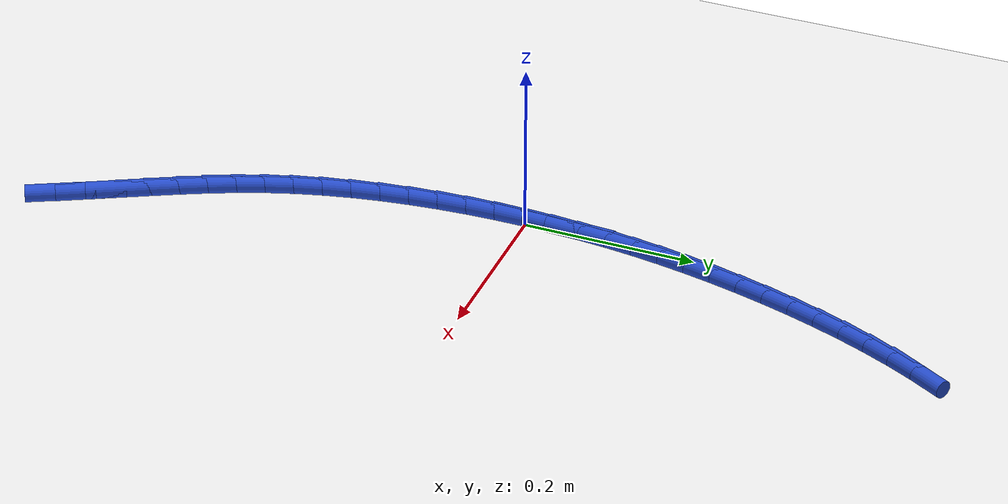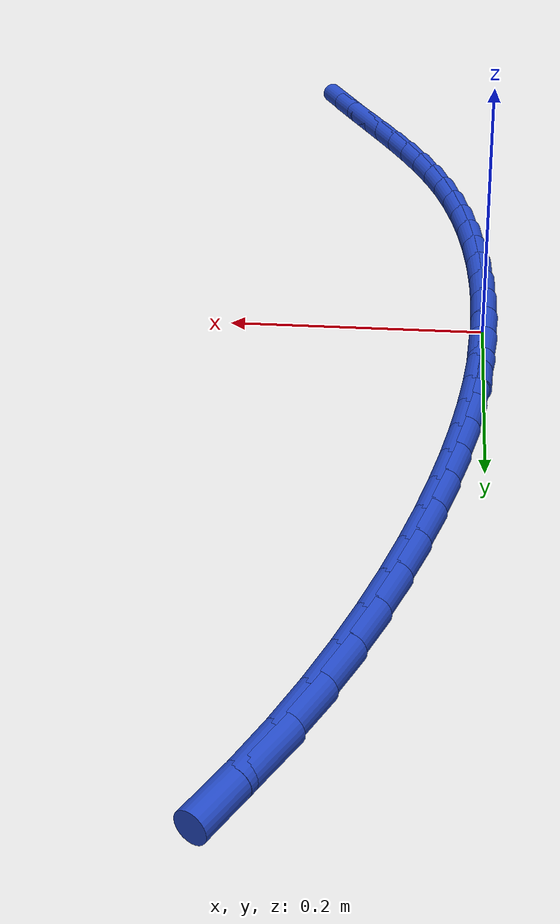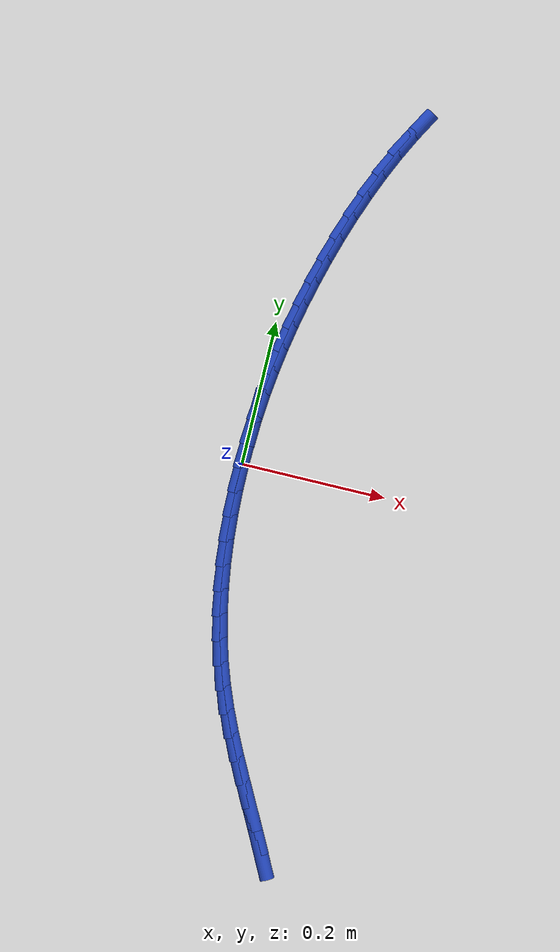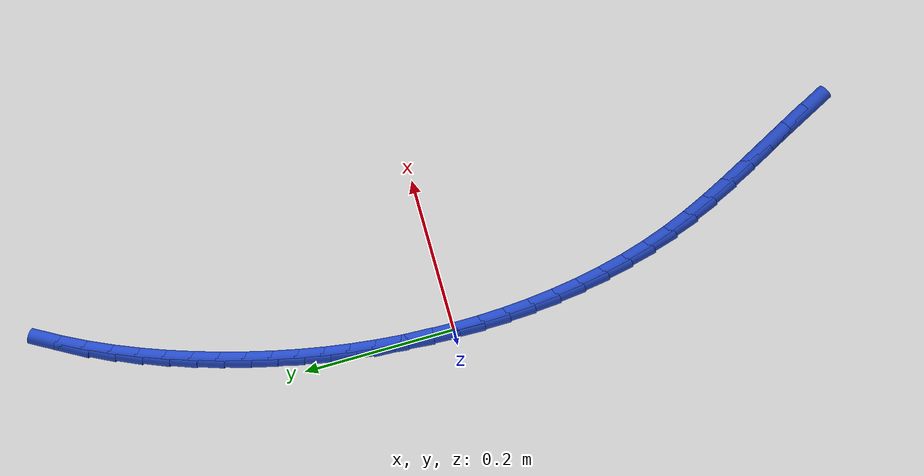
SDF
<sdf version="1.6">
 <world name="default">
  <model name="ground_plane">
   <static>1</static>
   <link name="link">
    <collision name="collision">
     <geometry><plane><normal>0 0 1</normal><size>100 100</size></plane></geometry>
     <surface><friction><ode><mu>100</mu><mu2>50</mu2></ode></friction></surface>
    </collision>
    <visual name="visual">
     <cast_shadows>0</cast_shadows>
     <geometry><plane><normal>0 0 1</normal><size>100 100</size></plane></geometry>
     <material>
      <script><uri>file://media/materials/scripts/gazebo.material</uri><name>Gazebo/WhiteGlow</name></script>
     </material>
    </visual>
   </link>
  </model>
  <model name="line">
   <link name="link_0">
    <pose>1.9949319973733282e-17 1.0408340855860843e-16 0.01 0 1.57 1.5419335508537704</pose>
    <collision name="collision">
     <geometry><cylinder><radius>0.01</radius><length>0.08</length></cylinder></geometry>
    </collision>
    <visual name="visual">
     <material>
      <script><name>Gazebo/Blue</name><uri>file://media/materials/scripts/gazebo.material</uri></script>
     </material>
     <geometry><cylinder><radius>0.01</radius><length>0.08</length></cylinder></geometry>
    </visual>
   </link>
   <link name="link_1">
    <pose>0.0009726199615363683 0.033688716046483366 0.01 0 1.57 1.5105921317045155</pose>
    <collision name="collision">
     <geometry><cylinder><radius>0.01</radius><length>0.08</length></cylinder></geometry>
    </collision>
    <visual name="visual">
     <material>
      <script><name>Gazebo/Blue</name><uri>file://media/materials/scripts/gazebo.material</uri></script>
     </material>
     <geometry><cylinder><radius>0.01</radius><length>0.08</length></cylinder></geometry>
    </visual>
   </link>
   <link name="link_2">
    <pose>0.0029908607633866275 0.06717146268576321 0.01 0 1.57 1.4793949921731384</pose>
    <collision name="collision">
     <geometry><cylinder><radius>0.01</radius><length>0.08</length></cylinder></geometry>
    </collision>
    <visual name="visual">
     <material>
      <script><name>Gazebo/Blue</name><uri>file://media/materials/scripts/gazebo.material</uri></script>
     </material>
     <geometry><cylinder><radius>0.01</radius><length>0.08</length></cylinder></geometry>
    </visual>
   </link>
   <link name="link_3">
    <pose>0.006043759239022774 0.1004794251721321 0.01 0 1.57 1.4484889801887455</pose>
    <collision name="collision">
     <geometry><cylinder><radius>0.01</radius><length>0.08</length></cylinder></geometry>
    </collision>
    <visual name="visual">
     <material>
      <script><name>Gazebo/Blue</name><uri>file://media/materials/scripts/gazebo.material</uri></script>
     </material>
     <geometry><cylinder><radius>0.01</radius><length>0.08</length></cylinder></geometry>
    </visual>
   </link>
   <link name="link_4">
    <pose>0.010120352221916788 0.13364378875988256 0.01 0 1.57 1.4180166907970888</pose>
    <collision name="collision">
     <geometry><cylinder><radius>0.01</radius><length>0.08</length></cylinder></geometry>
    </collision>
    <visual name="visual">
     <material>
      <script><name>Gazebo/Blue</name><uri>file://media/materials/scripts/gazebo.material</uri></script>
     </material>
     <geometry><cylinder><radius>0.01</radius><length>0.08</length></cylinder></geometry>
    </visual>
   </link>
   <link name="link_5">
    <pose>0.015209676545540646 0.1666957387033071 0.01 0 1.57 1.3881135808997143</pose>
    <collision name="collision">
     <geometry><cylinder><radius>0.01</radius><length>0.08</length></cylinder></geometry>
    </collision>
    <visual name="visual">
     <material>
      <script><name>Gazebo/Blue</name><uri>file://media/materials/scripts/gazebo.material</uri></script>
     </material>
     <geometry><cylinder><radius>0.01</radius><length>0.08</length></cylinder></geometry>
    </visual>
   </link>
   <link name="link_6">
    <pose>0.02130076904336632 0.19966646025669818 0.01 0 1.57 1.3589054377201917</pose>
    <collision name="collision">
     <geometry><cylinder><radius>0.01</radius><length>0.08</length></cylinder></geometry>
    </collision>
    <visual name="visual">
     <material>
      <script><name>Gazebo/Blue</name><uri>file://media/materials/scripts/gazebo.material</uri></script>
     </material>
     <geometry><cylinder><radius>0.01</radius><length>0.08</length></cylinder></geometry>
    </visual>
   </link>
   <link name="link_7">
    <pose>0.028382666548865808 0.2325871386743484 0.01 0 1.57 1.3305063078921995</pose>
    <collision name="collision">
     <geometry><cylinder><radius>0.01</radius><length>0.08</length></cylinder></geometry>
    </collision>
    <visual name="visual">
     <material>
      <script><name>Gazebo/Blue</name><uri>file://media/materials/scripts/gazebo.material</uri></script>
     </material>
     <geometry><cylinder><radius>0.01</radius><length>0.08</length></cylinder></geometry>
    </visual>
   </link>
   <link name="link_8">
    <pose>0.03644440589551107 0.26548895921055027 0.01 0 1.57 1.3030162141385755</pose>
    <collision name="collision">
     <geometry><cylinder><radius>0.01</radius><length>0.08</length></cylinder></geometry>
    </collision>
    <visual name="visual">
     <material>
      <script><name>Gazebo/Blue</name><uri>file://media/materials/scripts/gazebo.material</uri></script>
     </material>
     <geometry><cylinder><radius>0.01</radius><length>0.08</length></cylinder></geometry>
    </visual>
   </link>
   <link name="link_9">
    <pose>0.045475038593171375 0.29840306513913895 0.01 0 1.57 1.2757563169907238</pose>
    <collision name="collision">
     <geometry><cylinder><radius>0.01</radius><length>0.08</length></cylinder></geometry>
    </collision>
    <visual name="visual">
     <material>
      <script><name>Gazebo/Blue</name><uri>file://media/materials/scripts/gazebo.material</uri></script>
     </material>
     <geometry><cylinder><radius>0.01</radius><length>0.08</length></cylinder></geometry>
    </visual>
   </link>
   <link name="link_10">
    <pose>0.05547835118894845 0.3313184515426218 0.01 0 1.57 1.2464646805544286</pose>
    <collision name="collision">
     <geometry><cylinder><radius>0.01</radius><length>0.08</length></cylinder></geometry>
    </collision>
    <visual name="visual">
     <material>
      <script><name>Gazebo/Blue</name><uri>file://media/materials/scripts/gazebo.material</uri></script>
     </material>
     <geometry><cylinder><radius>0.01</radius><length>0.08</length></cylinder></geometry>
    </visual>
   </link>
   <link name="link_11">
    <pose>0.06650055607922055 0.36410275834271794 0.01 0 1.57 1.2145175076593782</pose>
    <collision name="collision">
     <geometry><cylinder><radius>0.01</radius><length>0.08</length></cylinder></geometry>
    </collision>
    <visual name="visual">
     <material>
      <script><name>Gazebo/Blue</name><uri>file://media/materials/scripts/gazebo.material</uri></script>
     </material>
     <geometry><cylinder><radius>0.01</radius><length>0.08</length></cylinder></geometry>
    </visual>
   </link>
   <link name="link_12">
    <pose>0.0785954551267921 0.39660191650459864 0.01 0 1.57 1.1796495253171062</pose>
    <collision name="collision">
     <geometry><cylinder><radius>0.01</radius><length>0.08</length></cylinder></geometry>
    </collision>
    <visual name="visual">
     <material>
      <script><name>Gazebo/Blue</name><uri>file://media/materials/scripts/gazebo.material</uri></script>
     </material>
     <geometry><cylinder><radius>0.01</radius><length>0.08</length></cylinder></geometry>
    </visual>
   </link>
   <link name="link_13">
    <pose>0.09181685019446763 0.42866185699343556 0.01 0 1.57 1.1415731795454505</pose>
    <collision name="collision">
     <geometry><cylinder><radius>0.01</radius><length>0.08</length></cylinder></geometry>
    </collision>
    <visual name="visual">
     <material>
      <script><name>Gazebo/Blue</name><uri>file://media/materials/scripts/gazebo.material</uri></script>
     </material>
     <geometry><cylinder><radius>0.01</radius><length>0.08</length></cylinder></geometry>
    </visual>
   </link>
   <link name="link_14">
    <pose>0.10621854314505162 0.4601285107744 0.01 0 1.57 1.099983200029256</pose>
    <collision name="collision">
     <geometry><cylinder><radius>0.01</radius><length>0.08</length></cylinder></geometry>
    </collision>
    <visual name="visual">
     <material>
      <script><name>Gazebo/Blue</name><uri>file://media/materials/scripts/gazebo.material</uri></script>
     </material>
     <geometry><cylinder><radius>0.01</radius><length>0.08</length></cylinder></geometry>
    </visual>
   </link>
   <link name="link_15">
    <pose>0.12185433584134847 0.4908478088126632 0.01 0 1.57 1.0545647301251566</pose>
    <collision name="collision">
     <geometry><cylinder><radius>0.01</radius><length>0.08</length></cylinder></geometry>
    </collision>
    <visual name="visual">
     <material>
      <script><name>Gazebo/Blue</name><uri>file://media/materials/scripts/gazebo.material</uri></script>
     </material>
     <geometry><cylinder><radius>0.01</radius><length>0.08</length></cylinder></geometry>
    </visual>
   </link>
   <link name="link_194">
    <pose>0.14718050907473887 -0.5065443065256882 0.01 0 1.57 -1.0992783414237661</pose>
    <collision name="collision">
     <geometry><cylinder><radius>0.01</radius><length>0.08</length></cylinder></geometry>
    </collision>
    <visual name="visual">
     <material>
      <script><name>Gazebo/Blue</name><uri>file://media/materials/scripts/gazebo.material</uri></script>
     </material>
     <geometry><cylinder><radius>0.01</radius><length>0.08</length></cylinder></geometry>
    </visual>
   </link>
   <link name="link_195">
    <pose>0.13162006378295024 -0.476026271789542 0.01 0 1.57 -1.0874153535631192</pose>
    <collision name="collision">
     <geometry><cylinder><radius>0.01</radius><length>0.08</length></cylinder></geometry>
    </collision>
    <visual name="visual">
     <material>
      <script><name>Gazebo/Blue</name><uri>file://media/materials/scripts/gazebo.material</uri></script>
     </material>
     <geometry><cylinder><radius>0.01</radius><length>0.08</length></cylinder></geometry>
    </visual>
   </link>
   <link name="link_196">
    <pose>0.11595981991916446 -0.44619244969084665 0.01 0 1.57 -1.086075896297298</pose>
    <collision name="collision">
     <geometry><cylinder><radius>0.01</radius><length>0.08</length></cylinder></geometry>
    </collision>
    <visual name="visual">
     <material>
      <script><name>Gazebo/Blue</name><uri>file://media/materials/scripts/gazebo.material</uri></script>
     </material>
     <geometry><cylinder><radius>0.01</radius><length>0.08</length></cylinder></geometry>
    </visual>
   </link>
   <link name="link_197">
    <pose>0.10047162736899574 -0.41678219061366645 0.01 0 1.57 -1.0957098821176436</pose>
    <collision name="collision">
     <geometry><cylinder><radius>0.01</radius><length>0.08</length></cylinder></geometry>
    </collision>
    <visual name="visual">
     <material>
      <script><name>Gazebo/Blue</name><uri>file://media/materials/scripts/gazebo.material</uri></script>
     </material>
     <geometry><cylinder><radius>0.01</radius><length>0.08</length></cylinder></geometry>
    </visual>
   </link>
   <link name="link_198">
    <pose>0.08542733601805721 -0.38753484494206397 0.01 0 1.57 -1.1165707008320997</pose>
    <collision name="collision">
     <geometry><cylinder><radius>0.01</radius><length>0.08</length></cylinder></geometry>
    </collision>
    <visual name="visual">
     <material>
      <script><name>Gazebo/Blue</name><uri>file://media/materials/scripts/gazebo.material</uri></script>
     </material>
     <geometry><cylinder><radius>0.01</radius><length>0.08</length></cylinder></geometry>
    </visual>
   </link>
   <link name="link_199">
    <pose>0.07109879575196226 -0.3581897630601021 0.01 0 1.57 -1.1486599419656218</pose>
    <collision name="collision">
     <geometry><cylinder><radius>0.01</radius><length>0.08</length></cylinder></geometry>
    </collision>
    <visual name="visual">
     <material>
      <script><name>Gazebo/Blue</name><uri>file://media/materials/scripts/gazebo.material</uri></script>
     </material>
     <geometry><cylinder><radius>0.01</radius><length>0.08</length></cylinder></geometry>
    </visual>
   </link>
   <link name="link_200">
    <pose>0.05775785645632439 -0.32848629535184376 0.01 0 1.57 -1.1916414689127972</pose>
    <collision name="collision">
     <geometry><cylinder><radius>0.01</radius><length>0.08</length></cylinder></geometry>
    </collision>
    <visual name="visual">
     <material>
      <script><name>Gazebo/Blue</name><uri>file://media/materials/scripts/gazebo.material</uri></script>
     </material>
     <geometry><cylinder><radius>0.01</radius><length>0.08</length></cylinder></geometry>
    </visual>
   </link>
   <link name="link_201">
    <pose>0.04567636801675703 -0.29816379220135225 0.01 0 1.57 -1.2431879901160843</pose>
    <collision name="collision">
     <geometry><cylinder><radius>0.01</radius><length>0.08</length></cylinder></geometry>
    </collision>
    <visual name="visual">
     <material>
      <script><name>Gazebo/Blue</name><uri>file://media/materials/scripts/gazebo.material</uri></script>
     </material>
     <geometry><cylinder><radius>0.01</radius><length>0.08</length></cylinder></geometry>
    </visual>
   </link>
   <link name="link_202">
    <pose>0.03508766857888196 -0.26700725184594953 0.01 0 1.57 -1.2939681218987467</pose>
    <collision name="collision">
     <geometry><cylinder><radius>0.01</radius><length>0.08</length></cylinder></geometry>
    </collision>
    <visual name="visual">
     <material>
      <script><name>Gazebo/Blue</name><uri>file://media/materials/scripts/gazebo.material</uri></script>
     </material>
     <geometry><cylinder><radius>0.01</radius><length>0.08</length></cylinder></geometry>
    </visual>
   </link>
   <link name="link_203">
    <pose>0.026009811947566037 -0.23505684842511634 0.01 0 1.57 -1.3411731811245864</pose>
    <collision name="collision">
     <geometry><cylinder><radius>0.01</radius><length>0.08</length></cylinder></geometry>
    </collision>
    <visual name="visual">
     <material>
      <script><name>Gazebo/Blue</name><uri>file://media/materials/scripts/gazebo.material</uri></script>
     </material>
     <geometry><cylinder><radius>0.01</radius><length>0.08</length></cylinder></geometry>
    </visual>
   </link>
   <link name="link_204">
    <pose>0.018386080937095615 -0.20244138191572056 0.01 0 1.57 -1.3851434650005185</pose>
    <collision name="collision">
     <geometry><cylinder><radius>0.01</radius><length>0.08</length></cylinder></geometry>
    </collision>
    <visual name="visual">
     <material>
      <script><name>Gazebo/Blue</name><uri>file://media/materials/scripts/gazebo.material</uri></script>
     </material>
     <geometry><cylinder><radius>0.01</radius><length>0.08</length></cylinder></geometry>
    </visual>
   </link>
   <link name="link_205">
    <pose>0.012159683888327336 -0.16928974056777052 0.01 0 1.57 -1.4262217985888788</pose>
    <collision name="collision">
     <geometry><cylinder><radius>0.01</radius><length>0.08</length></cylinder></geometry>
    </collision>
    <visual name="visual">
     <material>
      <script><name>Gazebo/Blue</name><uri>file://media/materials/scripts/gazebo.material</uri></script>
     </material>
     <geometry><cylinder><radius>0.01</radius><length>0.08</length></cylinder></geometry>
    </visual>
   </link>
   <link name="link_206">
    <pose>0.007273829142117814 -0.13573081263127465 0.01 0 1.57 -1.4647421703042942</pose>
    <collision name="collision">
     <geometry><cylinder><radius>0.01</radius><length>0.08</length></cylinder></geometry>
    </collision>
    <visual name="visual">
     <material>
      <script><name>Gazebo/Blue</name><uri>file://media/materials/scripts/gazebo.material</uri></script>
     </material>
     <geometry><cylinder><radius>0.01</radius><length>0.08</length></cylinder></geometry>
    </visual>
   </link>
   <link name="link_207">
    <pose>0.003671725039323689 -0.10189348635624129 0.01 0 1.57 -1.5010254955931128</pose>
    <collision name="collision">
     <geometry><cylinder><radius>0.01</radius><length>0.08</length></cylinder></geometry>
    </collision>
    <visual name="visual">
     <material>
      <script><name>Gazebo/Blue</name><uri>file://media/materials/scripts/gazebo.material</uri></script>
     </material>
     <geometry><cylinder><radius>0.01</radius><length>0.08</length></cylinder></geometry>
    </visual>
   </link>
   <link name="link_208">
    <pose>0.0012965799208015986 -0.06790664999267884 0.01 0 1.57 -1.535378393156517</pose>
    <collision name="collision">
     <geometry><cylinder><radius>0.01</radius><length>0.08</length></cylinder></geometry>
    </collision>
    <visual name="visual">
     <material>
      <script><name>Gazebo/Blue</name><uri>file://media/materials/scripts/gazebo.material</uri></script>
     </material>
     <geometry><cylinder><radius>0.01</radius><length>0.08</length></cylinder></geometry>
    </visual>
   </link>
   <link name="link_209">
    <pose>9.160212740814879e-05 -0.033899191790594786 0.01 0 1.57 -1.5680941412967822</pose>
    <collision name="collision">
     <geometry><cylinder><radius>0.01</radius><length>0.08</length></cylinder></geometry>
    </collision>
    <visual name="visual">
     <material>
      <script><name>Gazebo/Blue</name><uri>file://media/materials/scripts/gazebo.material</uri></script>
     </material>
     <geometry><cylinder><radius>0.01</radius><length>0.08</length></cylinder></geometry>
    </visual>
   </link>
   <link name="link_210">
    <pose>2.2551405187698492e-17 6.245004513516506e-17 0.01 0 1.57 1.5421374054547796</pose>
    <collision name="collision">
     <geometry><cylinder><radius>0.01</radius><length>0.08</length></cylinder></geometry>
    </collision>
    <visual name="visual">
     <material>
      <script><name>Gazebo/Blue</name><uri>file://media/materials/scripts/gazebo.material</uri></script>
     </material>
     <geometry><cylinder><radius>0.01</radius><length>0.08</length></cylinder></geometry>
    </visual>
   </link>
   <link name="link_211">
    <pose>0.0009649818794338063 0.033662037129099744 0.01 0 1.57 1.5118553486955064</pose>
    <collision name="collision">
     <geometry><cylinder><radius>0.01</radius><length>0.08</length></cylinder></geometry>
    </collision>
    <visual name="visual">
     <material>
      <script><name>Gazebo/Blue</name><uri>file://media/materials/scripts/gazebo.material</uri></script>
     </material>
     <geometry><cylinder><radius>0.01</radius><length>0.08</length></cylinder></geometry>
    </visual>
   </link>
   <link name="link_212">
    <pose>0.0029297561065662614 0.06695803134669664 0.01 0 1.57 1.5270691067699678</pose>
    <collision name="collision">
     <geometry><cylinder><radius>0.01</radius><length>0.08</length></cylinder></geometry>
    </collision>
    <visual name="visual">
     <material>
      <script><name>Gazebo/Blue</name><uri>file://media/materials/scripts/gazebo.material</uri></script>
     </material>
     <geometry><cylinder><radius>0.01</radius><length>0.08</length></cylinder></geometry>
    </visual>
   </link>
  </model>
 </world>
</sdf>
